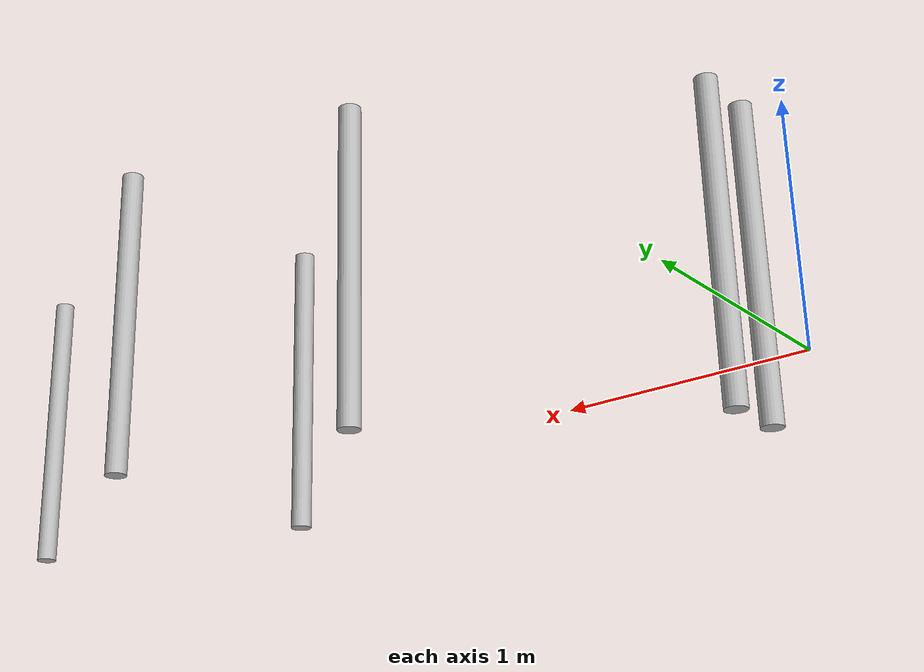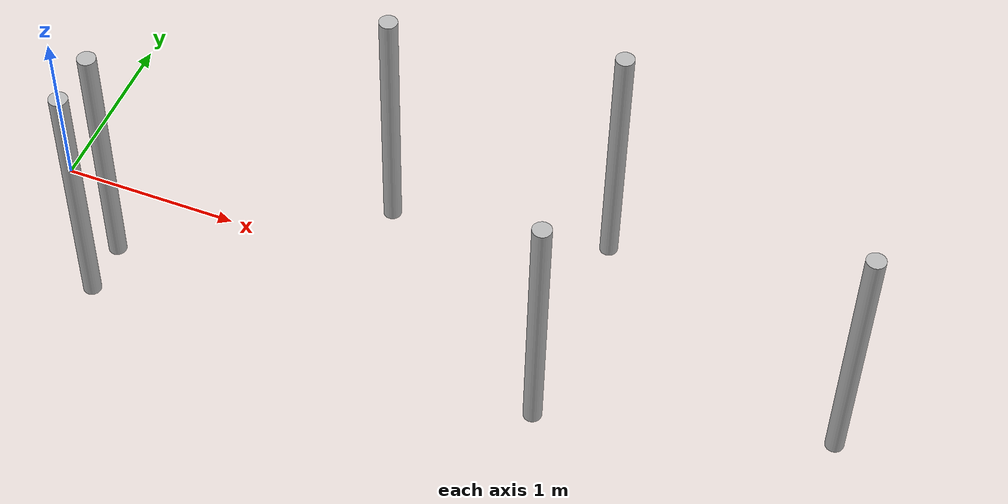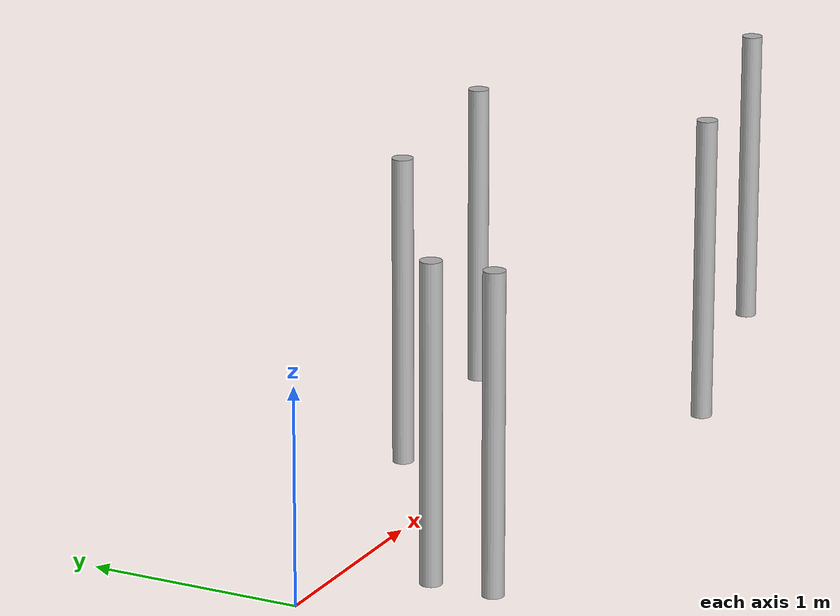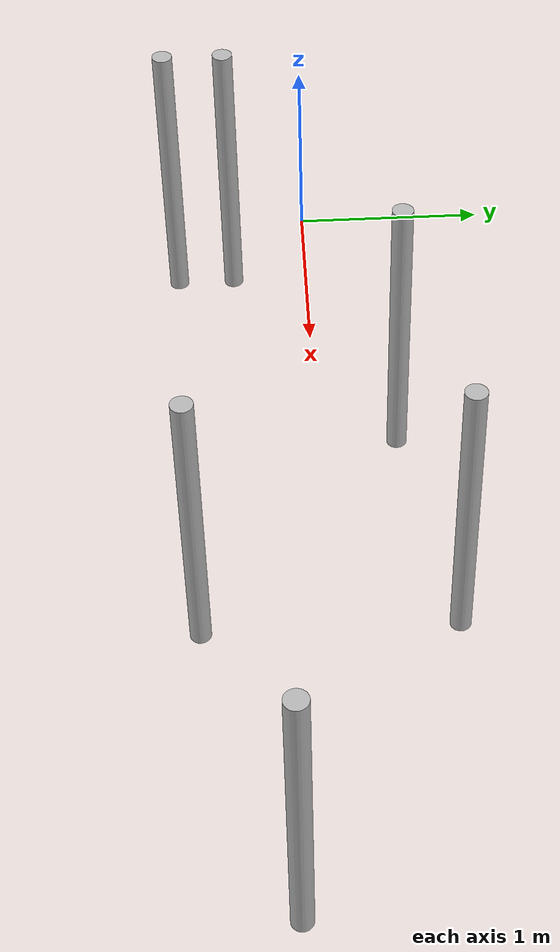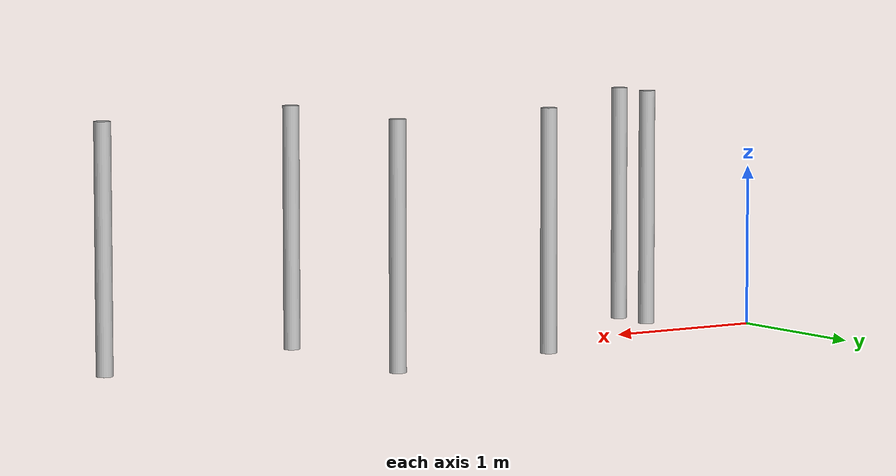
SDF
<?xml version="1.0"?>
<sdf version="1.4">
  <model name="obstacle_course">
    <pose>0 0 0 0 0 0</pose>
    <static>true</static>
    <link name="cylinder06">
      <pose>3 0.6 0.736 0.0 -0.0 0.0</pose>
      <collision name="collision">
        <geometry>
          <cylinder>
            <radius>0.0500</radius>
            <length>1.4800</length>
          </cylinder>
        </geometry>
      </collision>
      <visual name="visual">
        <geometry>
          <cylinder>
            <radius>0.0500</radius>
            <length>1.4800</length>
          </cylinder>
        </geometry>
        <material/>
      </visual>
    </link>
    <link name="cylinder03">
      <pose>3 -0.6 0.736 0.0 -0.0 0.0</pose>
      <collision name="collision">
        <geometry>
          <cylinder>
            <radius>0.0500</radius>
            <length>1.4800</length>
          </cylinder>
        </geometry>
      </collision>
      <visual name="visual">
        <geometry>
          <cylinder>
            <radius>0.0500</radius>
            <length>1.4800</length>
          </cylinder>
        </geometry>
        <material/>
      </visual>
    </link>
    <link name="cylinder09">
      <pose>4.5 -0.2 0.736 0.0 -0.0 0.0</pose>
      <collision name="collision">
        <geometry>
          <cylinder>
            <radius>0.0500</radius>
            <length>1.4800</length>
          </cylinder>
        </geometry>
      </collision>
      <visual name="visual">
        <geometry>
          <cylinder>
            <radius>0.0500</radius>
            <length>1.4800</length>
          </cylinder>
        </geometry>
        <material/>
      </visual>
    </link>
    <link name="cylinder01">
      <pose>1.8 0.4 0.736 0.0 -0.0 0.0</pose>
      <collision name="collision">
        <geometry>
          <cylinder>
            <radius>0.0500</radius>
            <length>1.4800</length>
          </cylinder>
        </geometry>
      </collision>
      <visual name="visual">
        <geometry>
          <cylinder>
            <radius>0.0500</radius>
            <length>1.4800</length>
          </cylinder>
        </geometry>
        <material/>
      </visual>
    </link>
    <link name="cylinder02">
      <pose>0.5 -0.7 0.736 0.0 -0.0 0.0</pose>
      <collision name="collision">
        <geometry>
          <cylinder>
            <radius>0.0500</radius>
            <length>1.4800</length>
          </cylinder>
        </geometry>
      </collision>
      <visual name="visual">
        <geometry>
          <cylinder>
            <radius>0.0500</radius>
            <length>1.4800</length>
          </cylinder>
        </geometry>
        <material/>
      </visual>
    </link>
    <link name="cylinder021">
      <pose>0.5 -0.4 0.736 0.0 -0.0 0.0</pose>
      <collision name="collision">
        <geometry>
          <cylinder>
            <radius>0.0500</radius>
            <length>1.4800</length>
          </cylinder>
        </geometry>
      </collision>
      <visual name="visual">
        <geometry>
          <cylinder>
            <radius>0.0500</radius>
            <length>1.4800</length>
          </cylinder>
        </geometry>
        <material/>
      </visual>
    </link>
  </model>
</sdf>
